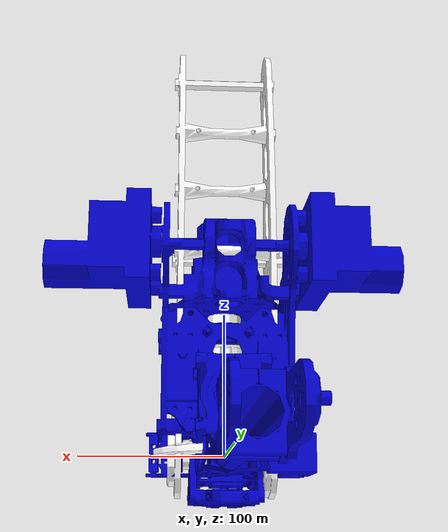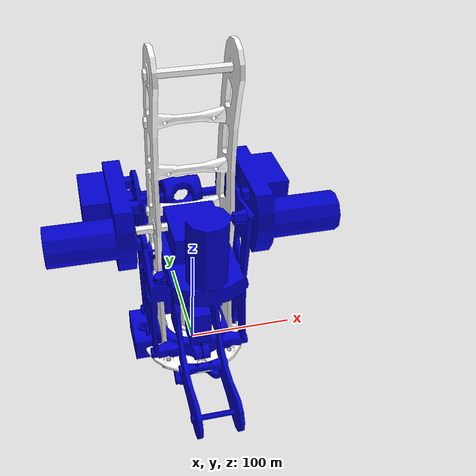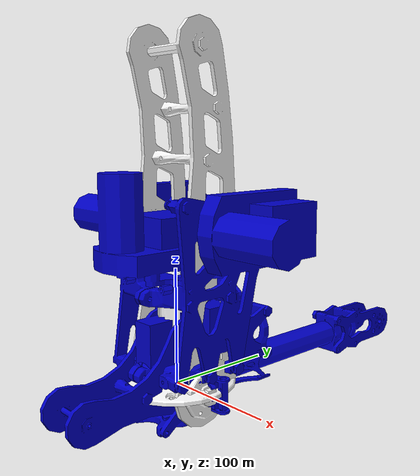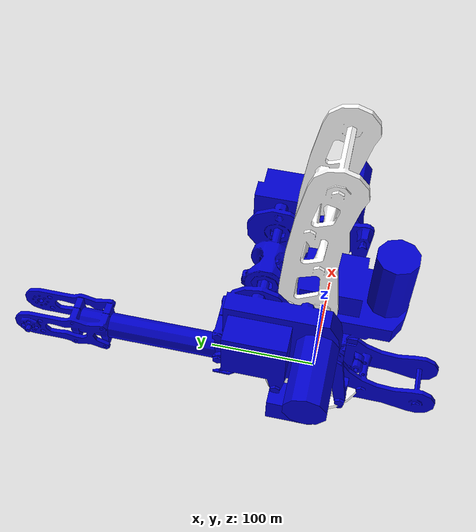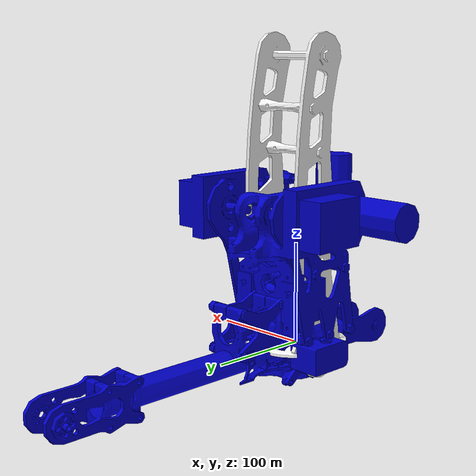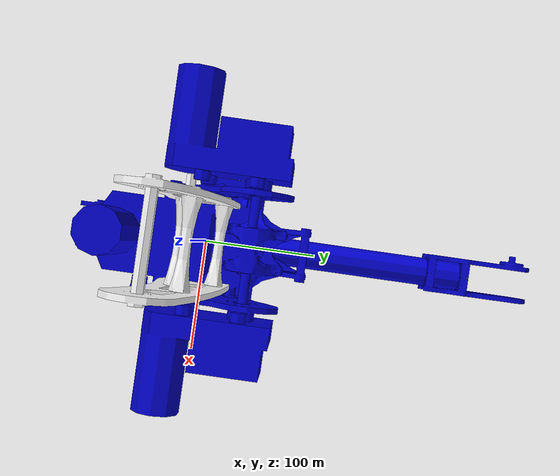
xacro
<?xml version="1.0"?>
<robot xmlns:xacro="http://www.ros.org/wiki/xacro" name="test_robot">
<!--********************************const param***********************************-->
<xacro:property name="M_PI"   value="3.141592654"/>
<xacro:property name="M_PI_2" value="1.570796327"/>
<!--***********************************link***************************************-->
  <link name="arm_link">
      <visual>
        <geometry>
         <mesh filename="package://x_description/arm/meshes/visual/mounting_base.dae" scale="0.1 0.1 0.1"/>
         </geometry>
        <material name="white">
        <color rgba="1 1 1 1"/>
      </material>
       <origin rpy="${M_PI_2} 0 0" xyz="0 0 0"/>

    </visual>
    <collision>
        <geometry>
          <box size="0.3 .3 .02"/>
        </geometry>
       <origin rpy="0 0 0" xyz="0 0 .01"/>
    </collision>
  </link>

  <link name="arm_rota_link">
      <visual>
        <geometry>
          <mesh filename="package://x_description/arm/meshes/visual/rotating_base.dae" scale="0.1 0.1 0.1"/>
        </geometry>
        <material name="blue">
          <color rgba="0 0 .8 1"/>
        </material>
        <origin rpy="${M_PI_2} 0 ${M_PI}" xyz="0 0 0"/>
      </visual>
      <collision>
        <geometry>
          <box size=".14 .18 .18"/>
        </geometry>
	<origin rpy="0 0 0" xyz="0 0 .09"/>
      </collision>

  </link>

  <link name="arm_a_link">
    <visual>
       <geometry>
          <mesh filename="package://x_description/arm/meshes/visual/arm_a.dae" scale="0.1 0.1 0.1"/>
       </geometry>
      <material name="white">
        <color rgba="1 1 1 1"/>
      </material>
       <origin rpy="${M_PI_2} 0 ${M_PI}" xyz="0 0 0"/>
    </visual>
    <collision>
       <geometry>
            <box size=".1 .06 .34"/>
       </geometry>
       <origin rpy="0 0 0" xyz="0 0.015 0.14"/>
    </collision>
  </link>

  <link name="passive_a_link">
  </link>

  <link name="arm_b_link">
    <visual>
       <geometry>
         <mesh filename="package://x_description/arm/meshes/visual/arm_b.dae" scale="0.1 0.1 0.1"/>
       </geometry>
      <material name="blue">
      </material>
       <origin rpy="${M_PI_2} 0 ${M_PI}" xyz="0 0 0"/>
     </visual>
     <collision>
       <geometry>
            <box size=".05 .22 .11"/>
       </geometry>
       <origin rpy="0 0 0" xyz="0 -0.01 0.025"/>
     </collision>
  </link>

  <link name="arm_c_link">
    <visual>
       <geometry>
         <mesh filename="package://x_description/arm/meshes/visual/arm_c.dae" scale="0.1 0.1 0.1"/>
       </geometry>
       <origin rpy="0 ${M_PI} 0" xyz="0 0 0"/>
	 <material name="blue"/>
    </visual>
    <collision>
       <geometry>
          <cylinder length="0.28" radius="0.03"/>
       </geometry>
       <origin rpy="${M_PI_2} 0 0" xyz="0 0.155 0"/>

    </collision>
  </link>

  <link name="arm_d_link">
    <visual>
       <geometry>
          <mesh filename="package://x_description/arm/meshes/visual/arm_d.dae" scale="0.1 0.1 0.1"/>
       </geometry>
       <origin rpy="0 0 0" xyz="0 0 0"/>
<material name="blue"/>
    </visual>
    <collision>
       <geometry>
            <box size=".10 .07 .08"/>
       </geometry>
       <origin rpy="0 0 0" xyz="-0.014 0 0"/>
    </collision>
  </link>

  <link name="arm_hand_link">
    <visual>
       <geometry>
          <mesh filename="package://x_description/arm/meshes/visual/hand.dae" scale="0.1 0.1 0.1"/>
       </geometry>
       <origin rpy="0 0 0" xyz="0 0 0"/>
<material name="blue"/>
    </visual>
    <collision>
       <geometry>
            <box size=".11 .013 .030"/>
       </geometry>
       <origin rpy="0 0 0" xyz="0  0.006 0"/>
    </collision>
  </link>

  <link name="arm_finger_a_link">
    <visual>
       <geometry>
          <mesh filename="package://x_description/arm/meshes/visual/finger.dae" scale="0.1 0.1 0.1"/>
       </geometry>
       <origin rpy="0 ${M_PI} 0" xyz="0 0.1 0"/>
<material name="blue"/>
    </visual>
    <collision>
       <geometry>
            <box size=".11 .013 .030"/>
       </geometry>
       <origin rpy="0 0 0" xyz="0  0.006 0"/>
    </collision>
  </link>

  <link name="arm_finger_b_link">
    <visual>
       <geometry>
          <mesh filename="package://x_description/arm/meshes/visual/finger.dae" scale="0.1 0.1 0.1"/>
       </geometry>
       <origin rpy="0 0 0" xyz="0 0.1 0"/>
<material name="blue"/>
    </visual>
    <collision>
       <geometry>
            <box size=".11 .013 .030"/>
       </geometry>
       <origin rpy="0 0 0" xyz="0  0.006 0"/>
    </collision>
  </link>

<!--***********************************transmission***************************************-->

<!--***********************************joint***************************************-->

  <joint name="joint_arm_a_1" type="revolute">
    <parent link="arm_link"/>
    <child link="arm_rota_link"/>
    <origin  rpy="0 0 0" xyz="0 0 0.0"/>
    <limit effort="1000.0" lower="-${M_PI_2}" upper="${M_PI_2}" velocity="0.5"/>
    <axis xyz="0 0 1"/>
  </joint>

  <joint name="joint_arm_a_2" type="revolute">
    <parent link="arm_rota_link"/>
    <child link="arm_a_link"/>
    <origin  rpy="0 0 0" xyz="0 0.05 0.137"/>
    <limit effort="1000.0" lower="-${M_PI_2}" upper="1.1" velocity="0.5"/>
  </joint>

  <joint name="passive_joint_a" type="revolute">
    <parent link="arm_a_link"/>
    <child link="passive_a_link"/>
    <origin  xyz="0 0 0.28"/>
    <axis xyz="1 0 0"/>
    <mimic joint="joint_arm_a_2" multiplier="-1.0" offset="0.0"/>
    <limit effort="1000.0" lower="-10.0" upper="10.0" velocity="1.0"/>
  </joint>

  <joint name="joint_arm_a_3" type="revolute">
    <parent link="passive_a_link"/>
    <child link="arm_b_link"/>
    <origin  xyz="0 0 0"/>
    <axis xyz="1 0 0"/>
    <limit effort="1000.0" lower="-2.2" upper="0.51" velocity="0.5"/>
  </joint>

  <joint name="joint_arm_b_1" type="revolute">
    <parent link="arm_b_link"/>
    <child link="arm_c_link"/>
     <origin  xyz="0 0.026 0.03"/>
     <axis xyz="0 1 0"/>
    <limit effort="1000.0" lower="-${M_PI_2}" upper="${M_PI_2}" velocity="0.5"/>
  </joint>

  <joint name="joint_arm_b_2" type="revolute">
    <parent link="arm_c_link"/>
    <child link="arm_d_link"/>
     <origin  xyz="0 0.2815 0"/>
     <axis xyz="1 0 0"/>
    <limit effort="1000.0" lower="-${M_PI_2}" upper="${M_PI_2}" velocity="0.5"/>
  </joint>

  <joint name="joint_arm_b_3" type="revolute">
    <parent link="arm_d_link"/>
    <child link="arm_hand_link"/>
     <origin  xyz="0 0.034 0"/>
     <axis xyz="0 1 0"/>
    <limit effort="1000.0" lower="-${M_PI_2}" upper="${M_PI_2}" velocity="0.5"/>
  </joint>

 <joint name="joint_finger_a" type="revolute">
    <parent link="arm_hand_link"/>
    <child link="arm_finger_a_link"/>
     <origin  xyz="-0.04 -0.09 0"/>
     <axis xyz="0 0 -1"/>
    <limit effort="1000.0" lower="-0.15" upper="0.11" velocity="0.5"/>
  </joint>

 <joint name="joint_finger_b" type="revolute">
    <parent link="arm_hand_link"/>
    <child link="arm_finger_b_link"/>
     <origin  xyz="0.04 -0.09 0"/>
     <axis xyz="0 0 1"/>
    <limit effort="1000.0" lower="-0.15" upper="0.11" velocity="0.5"/>
  </joint>

</robot>
